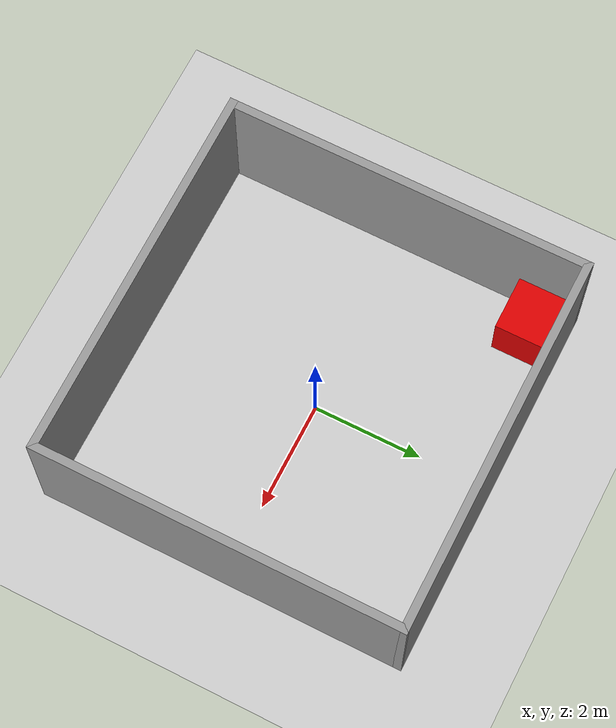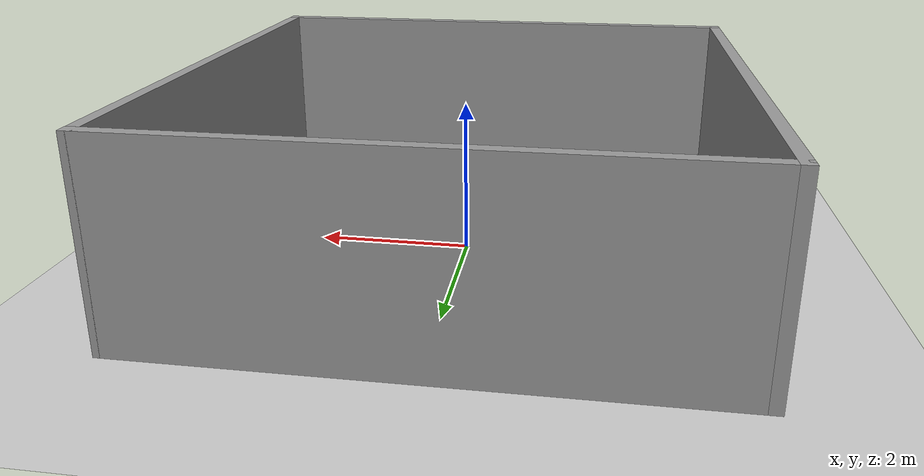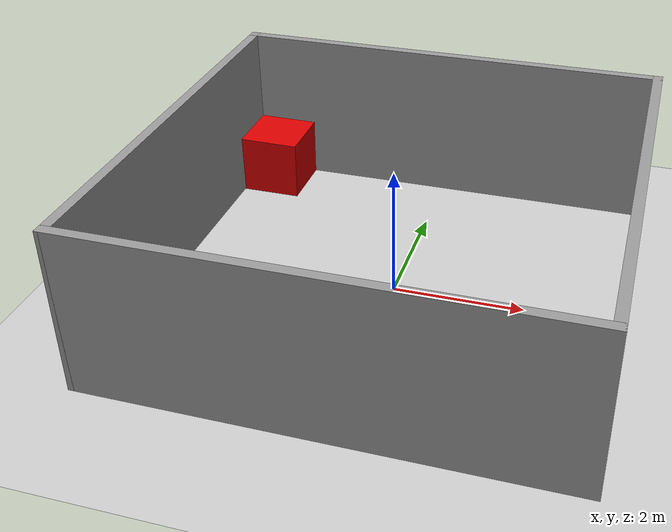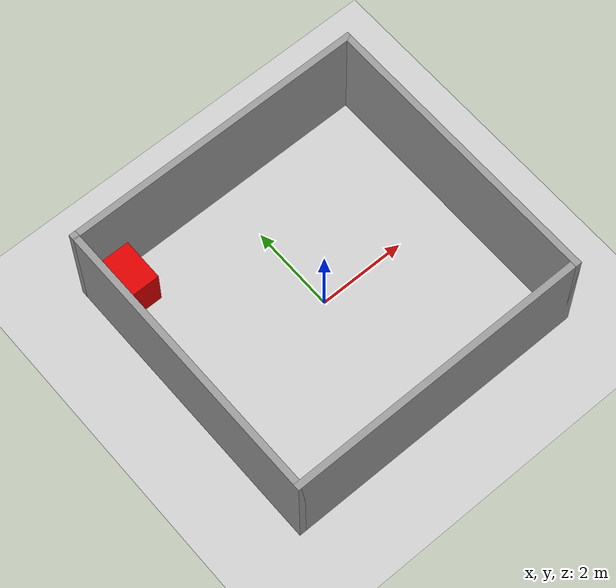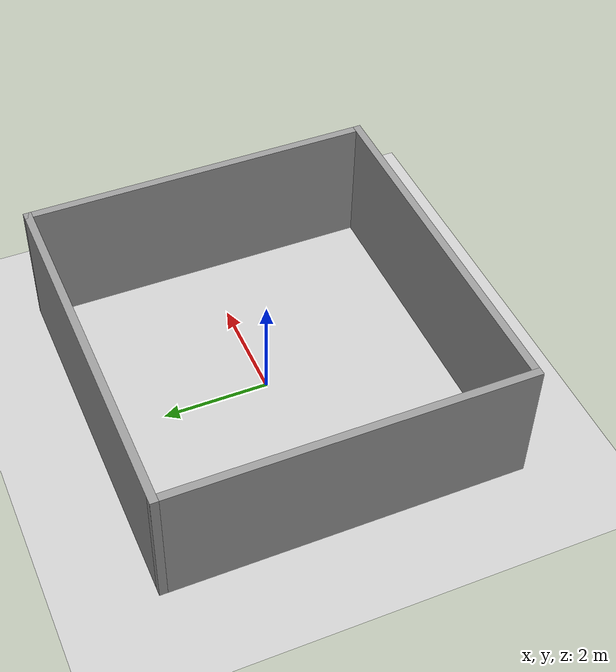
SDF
<sdf version="1.7">
 <world name="default">
  <light name="sun" type="directional">
   <pose>0 0 10 0 -0 0</pose>
   <diffuse>0.8 0.8 0.8 1</diffuse>
   <specular>0.2 0.2 0.2 1</specular>
   <attenuation>
    <range>1000</range>
    <constant>0.9</constant>
    <linear>0.01</linear>
    <quadratic>0.001</quadratic>
   </attenuation>
   <direction>-0.5 0.1 -0.9</direction>
   <spot><inner_angle>0</inner_angle><outer_angle>0</outer_angle><falloff>0</falloff></spot>
  </light>
  <model name="ground_plane">
   <static>1</static>
   <link name="link">
    <collision name="collision">
     <geometry><plane><normal>0 0 1</normal><size>100 100</size></plane></geometry>
     <surface>
      <contact><collide_bitmask>65535</collide_bitmask></contact>
      <friction><ode><mu>100</mu><mu2>50</mu2></ode></friction>
     </surface>
    </collision>
    <visual name="visual">
     <cast_shadows>0</cast_shadows>
     <geometry><plane><normal>0 0 1</normal><size>100 100</size></plane></geometry>
     <material>
      <script><uri>file://media/materials/scripts/gazebo.material</uri><name>Gazebo/Grey</name></script>
     </material>
    </visual>
   </link>
  </model>
  <gravity>0 0 -9.8</gravity>
  <magnetic_field>6e-06 2.3e-05 -4.2e-05</magnetic_field>
  <atmosphere type="adiabatic"/>
  <physics type="ode">
   <max_step_size>0.001</max_step_size>
   <real_time_factor>1</real_time_factor>
   <real_time_update_rate>1000</real_time_update_rate>
  </physics>
  <scene><ambient>0.4 0.4 0.4 1</ambient><background>0.7 0.7 0.7 1</background><shadows>1</shadows></scene>
  <spherical_coordinates>
   <surface_model>EARTH_WGS84</surface_model>
   <latitude_deg>0</latitude_deg>
   <longitude_deg>0</longitude_deg>
   <elevation>0</elevation>
   <heading_deg>0</heading_deg>
  </spherical_coordinates>
  <model name="simple">
   <pose>-0.024134 -0.029204 0 0 -0 0</pose>
   <link name="Wall_13">
    <collision name="Wall_13_Collision">
     <geometry><box><size>6.75 0.15 2.5</size></box></geometry>
     <pose>0 0 1.25 0 -0 0</pose>
    </collision>
    <visual name="Wall_13_Visual">
     <pose>0 0 1.25 0 -0 0</pose>
     <geometry><box><size>6.75 0.15 2.5</size></box></geometry>
     <material>
      <script><uri>file://media/materials/scripts/gazebo.material</uri><name>Gazebo/Grey</name></script>
      <ambient>1 1 1 1</ambient>
     </material>
     <meta><layer>0</layer></meta>
    </visual>
    <pose>-3.42501 4.4e-05 0 0 -0 -1.5708</pose>
   </link>
   <link name="Wall_14">
    <collision name="Wall_14_Collision">
     <geometry><box><size>7 0.15 2.5</size></box></geometry>
     <pose>0 0 1.25 0 -0 0</pose>
    </collision>
    <visual name="Wall_14_Visual">
     <pose>0 0 1.25 0 -0 0</pose>
     <geometry><box><size>7 0.15 2.5</size></box></geometry>
     <material>
      <script><uri>file://media/materials/scripts/gazebo.material</uri><name>Gazebo/Grey</name></script>
      <ambient>1 1 1 1</ambient>
     </material>
     <meta><layer>0</layer></meta>
    </visual>
    <pose>0 -3.3 0 0 -0 -1.3e-05</pose>
   </link>
   <link name="Wall_15">
    <collision name="Wall_15_Collision">
     <geometry><box><size>6.75 0.15 2.5</size></box></geometry>
     <pose>0 0 1.25 0 -0 0</pose>
    </collision>
    <visual name="Wall_15_Visual">
     <pose>0 0 1.25 0 -0 0</pose>
     <geometry><box><size>6.75 0.15 2.5</size></box></geometry>
     <material>
      <script><uri>file://media/materials/scripts/gazebo.material</uri><name>Gazebo/Grey</name></script>
      <ambient>1 1 1 1</ambient>
     </material>
     <meta><layer>0</layer></meta>
    </visual>
    <pose>3.42501 -4.3e-05 0 0 -0 1.5708</pose>
   </link>
   <link name="Wall_16">
    <collision name="Wall_16_Collision">
     <geometry><box><size>7 0.15 2.5</size></box></geometry>
     <pose>0 0 1.25 0 -0 0</pose>
    </collision>
    <visual name="Wall_16_Visual">
     <pose>0 0 1.25 0 -0 0</pose>
     <geometry><box><size>7 0.15 2.5</size></box></geometry>
     <material>
      <script><uri>file://media/materials/scripts/gazebo.material</uri><name>Gazebo/Grey</name></script>
      <ambient>1 1 1 1</ambient>
     </material>
     <meta><layer>0</layer></meta>
    </visual>
    <pose>0 3.3 0 0 -0 3.14158</pose>
   </link>
   <static>1</static>
  </model>
  <model name="simple2">
   <link name="link_0">
    <inertial>
     <mass>1</mass>
     <inertia>
      <ixx>0.166667</ixx>
      <ixy>0</ixy>
      <ixz>0</ixz>
      <iyy>0.166667</iyy>
      <iyz>0</iyz>
      <izz>0.166667</izz>
     </inertia>
    </inertial>
    <visual name="visual">
     <geometry><box><size>1 1 1</size></box></geometry>
     <material>
      <lighting>1</lighting>
      <script><uri>file://media/materials/scripts/gazebo.material</uri><name>Gazebo/Grey</name></script>
      <shader type="pixel"><normal_map>__default__</normal_map></shader>
      <ambient>0.863 0 0 1</ambient>
      <diffuse>0.863 0 0 1</diffuse>
      <specular>0.863 0 0 1</specular>
      <emissive>0.863 0 0 1</emissive>
     </material>
    </visual>
    <collision name="collision">
     <geometry><box><size>1 1 1</size></box></geometry>
     <surface>
      <friction>
       <ode><mu>1</mu><mu2>1</mu2><fdir1>0 0 0</fdir1><slip1>0</slip1><slip2>0</slip2></ode>
       <torsional>
        <coefficient>1</coefficient>
        <patch_radius>0</patch_radius>
        <surface_radius>0</surface_radius>
        <use_patch_radius>1</use_patch_radius>
        <ode><slip>0</slip></ode>
       </torsional>
      </friction>
      <bounce><restitution_coefficient>0</restitution_coefficient><threshold>1e+06</threshold></bounce>
      <contact>
       <collide_without_contact>0</collide_without_contact>
       <collide_without_contact_bitmask>1</collide_without_contact_bitmask>
       <collide_bitmask>1</collide_bitmask>
       <ode>
        <soft_cfm>0</soft_cfm>
        <soft_erp>0.2</soft_erp>
        <kp>1e+13</kp>
        <kd>1</kd>
        <max_vel>0.01</max_vel>
        <min_depth>0</min_depth>
       </ode>
       <bullet>
        <split_impulse>1</split_impulse>
        <split_impulse_penetration_threshold>-0.01</split_impulse_penetration_threshold>
        <soft_cfm>0</soft_cfm>
        <soft_erp>0.2</soft_erp>
        <kp>1e+13</kp>
        <kd>1</kd>
       </bullet>
      </contact>
     </surface>
    </collision>
   </link>
   <static>0</static>
   <pose>-2.89884 2.7164 0.475878 0.004571 0.010606 3e-05</pose>
  </model>
 </world>
</sdf>
